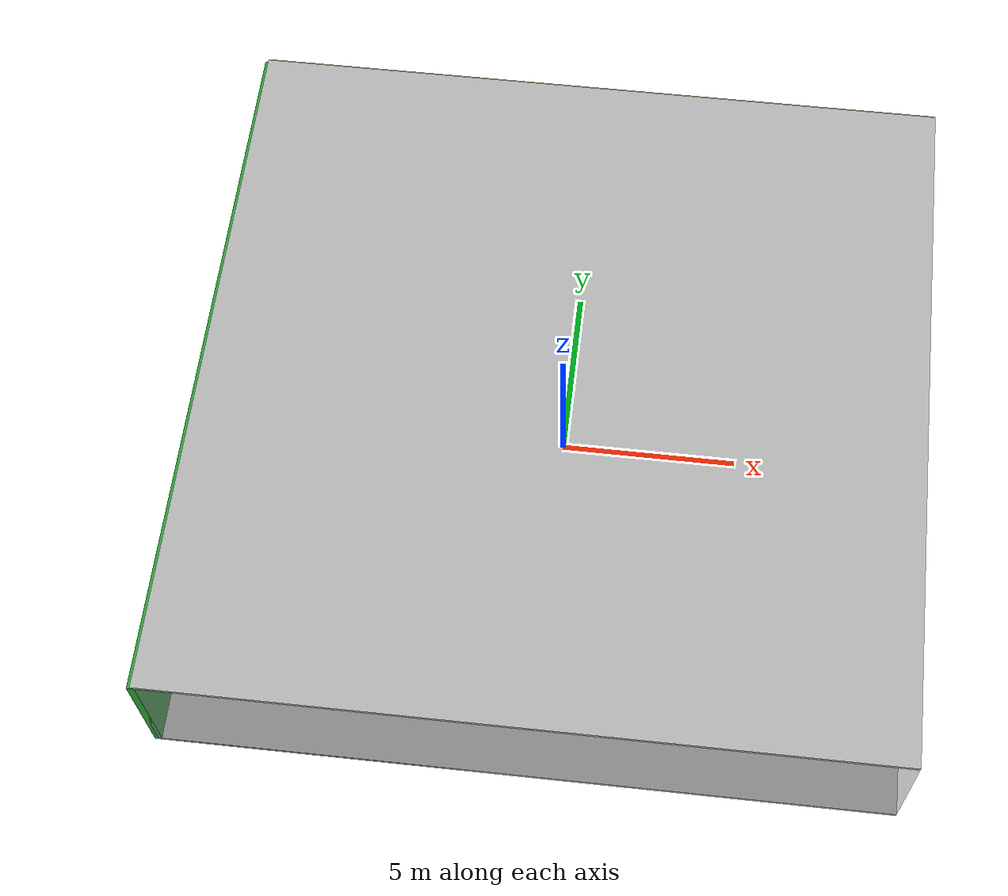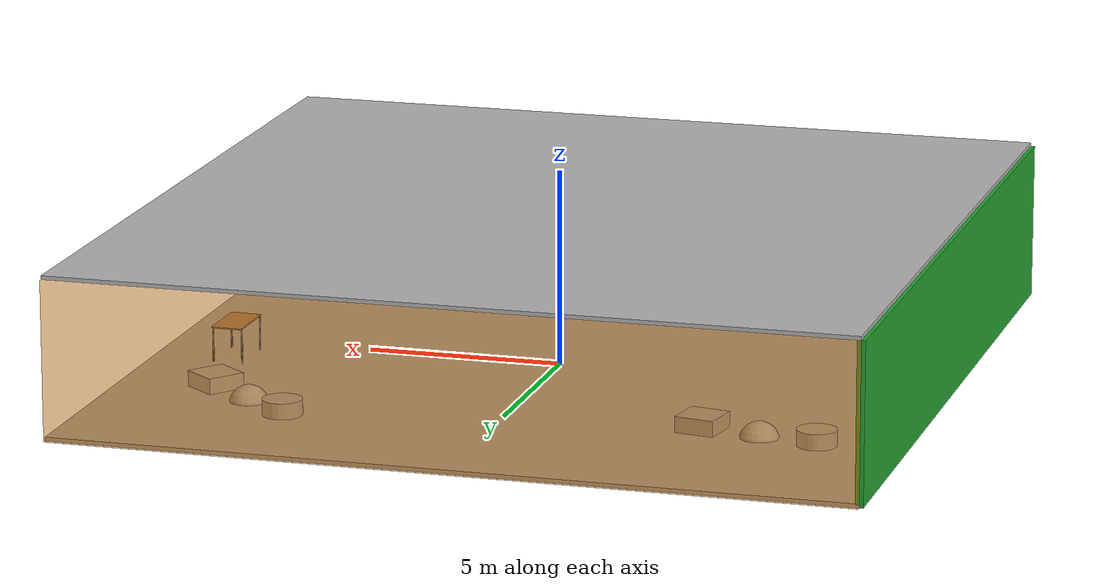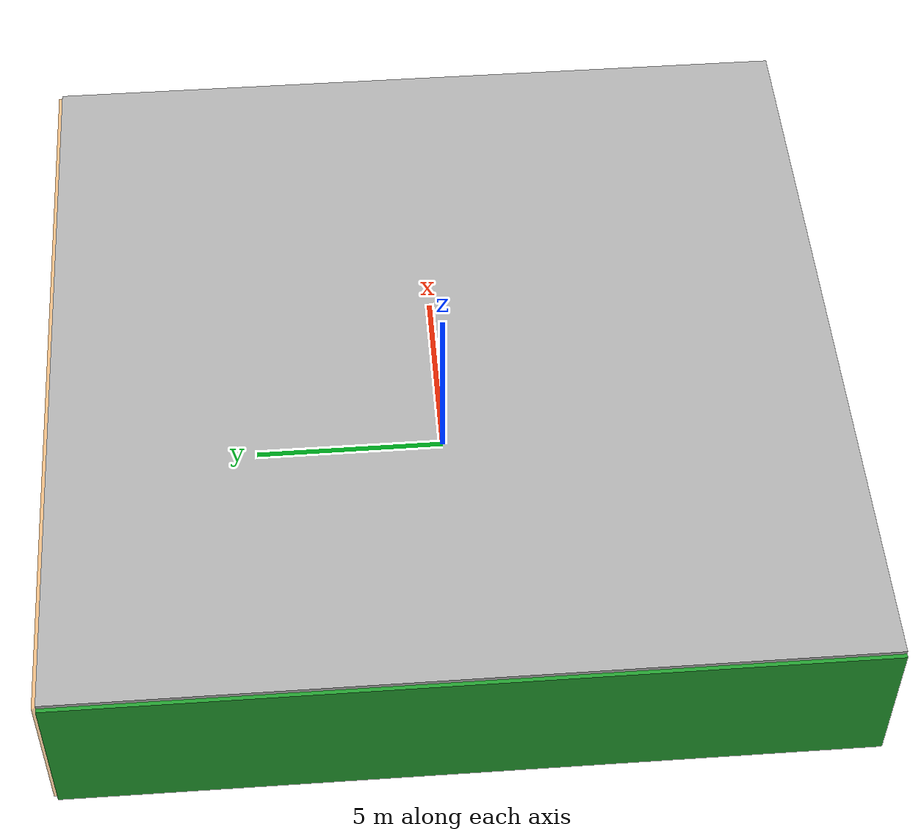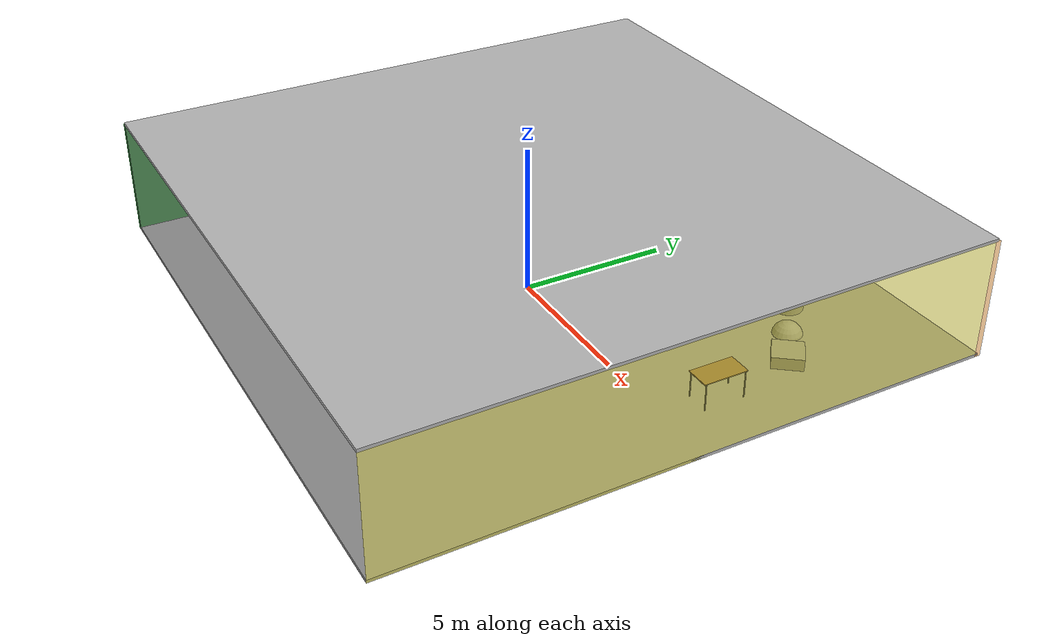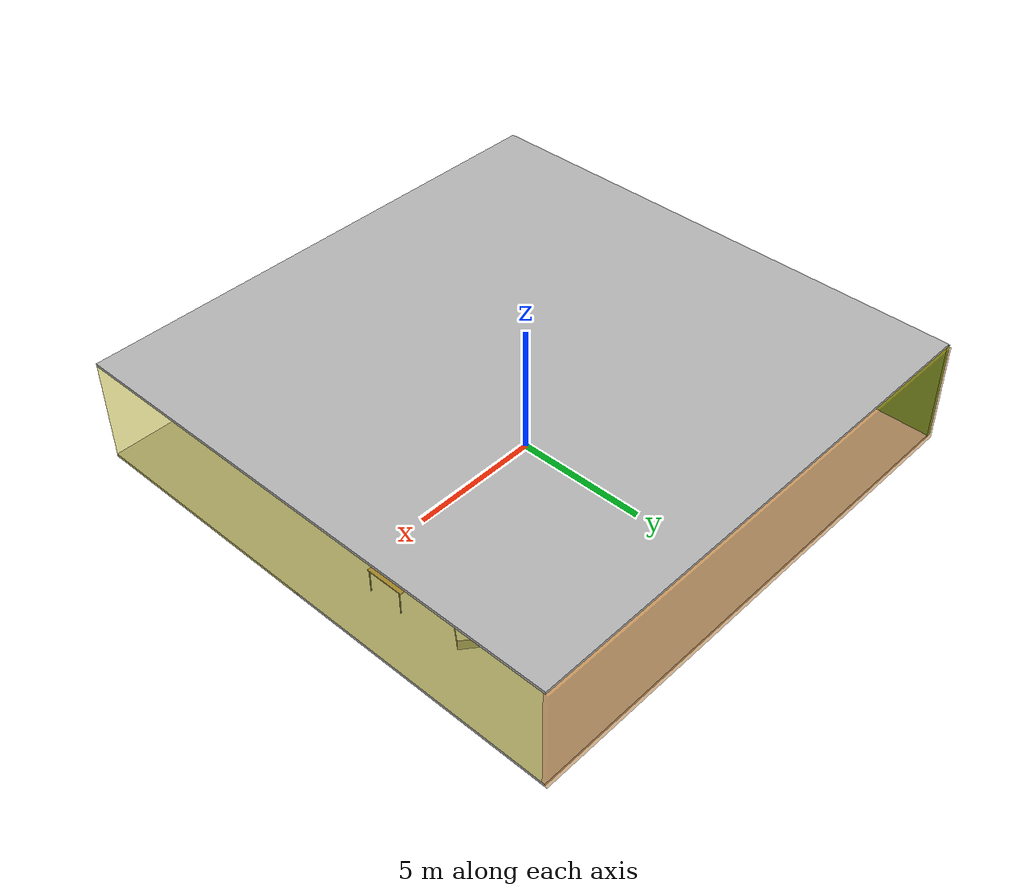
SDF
<sdf version="1.4">
 <world name="default">
  <physics type="ode">
   <max_step_size>0.001</max_step_size>
   <real_time_factor>1</real_time_factor>
   <real_time_update_rate>1000</real_time_update_rate>
   <gravity>0 0 -9.8</gravity>
  </physics>
  <scene><ambient>0.4 0.4 0.4 1</ambient><background>0.7 0.7 0.7 1</background><shadows>1</shadows></scene>
  <model name="Surrounding">
   <static>1</static>
   <link name="Ceiling">
    <collision name="Ceiling_Collision"><geometry><box><size>20 20 0.1</size></box></geometry></collision>
    <visual name="Ceiling_Visual">
     <geometry><box><size>20 20 0.1</size></box></geometry>
     <material>
      <script><uri>file://media/materials/scripts/gazebo.material</uri><name>Gazebo/CloudySky</name></script>
     </material>
    </visual>
    <pose>0 0 4.05 0 0 0</pose>
   </link>
   <link name="Wall_South">
    <collision name="Wall_South_Collision">
     <geometry><box><size>20 0 4</size></box></geometry>
     <pose>0 0 2 0 -0 0</pose>
    </collision>
    <visual name="Wall_South_Visual">
     <pose>0 0 2 0 -0 0</pose>
     <geometry><box><size>20 0 4</size></box></geometry>
     <material>
      <script><uri>file://media/materials/scripts/gazebo.material</uri><name>Gazebo/GreyTransparent</name></script>
     </material>
    </visual>
    <velocity_decay><linear>0</linear><angular>0</angular></velocity_decay>
    <pose>0 -10 0 0 -0 0</pose>
   </link>
   <link name="Wall_East">
    <collision name="Wall_21_Collision">
     <geometry><box><size>20 0 4</size></box></geometry>
     <pose>0 0 2 0 -0 0</pose>
    </collision>
    <visual name="Wall_21_Visual">
     <pose>0 0 2 0 -0 0</pose>
     <geometry><box><size>20 0 4</size></box></geometry>
     <material>
      <script>
       <uri>file://media/materials/scripts/gazebo.material</uri>
       <name>Gazebo/YellowTransparent</name>
      </script>
     </material>
    </visual>
    <velocity_decay><linear>0</linear><angular>0</angular></velocity_decay>
    <pose>10 0 0 0 -0 1.5708</pose>
   </link>
   <link name="Wall_North">
    <collision name="Wall_22_Collision">
     <geometry><box><size>20 0.2 4</size></box></geometry>
     <pose>0 0 2 0 -0 0</pose>
    </collision>
    <visual name="Wall_22_Visual">
     <pose>0 0 2 0 -0 0</pose>
     <geometry><box><size>20 0.2 4</size></box></geometry>
     <material>
      <script>
       <uri>file://media/materials/scripts/gazebo.material</uri>
       <name>Gazebo/OrangeTransparent</name>
      </script>
     </material>
    </visual>
    <velocity_decay><linear>0</linear><angular>0</angular></velocity_decay>
    <pose>0 10 0 0 -0 0</pose>
   </link>
   <link name="Wall_West">
    <collision name="Wall_23_Collision">
     <geometry><box><size>20 0.2 4</size></box></geometry>
     <pose>0 0 2 0 -0 0</pose>
    </collision>
    <visual name="Wall_23_Visual">
     <pose>0 0 2 0 -0 0</pose>
     <geometry><box><size>20 0.2 4</size></box></geometry>
     <material>
      <script><uri>file://media/materials/scripts/gazebo.material</uri><name>Gazebo/GreenGlow</name></script>
     </material>
    </visual>
    <velocity_decay><linear>0</linear><angular>0</angular></velocity_decay>
    <pose>-10 0 0 0 0 -1.5708</pose>
   </link>
   <link name="Ground_link">
    <collision name="collision">
     <pose>0 0 .05 0 -0 0</pose>
     <geometry><box><size>20 20 0.1</size></box></geometry>
    </collision>
    <visual name="visual">
     <pose>0 0 .05 0 -0 0</pose>
     <geometry><box><size>20 20 0.1</size></box></geometry>
     <material>
      <script><uri>file://media/materials/scripts/gazebo.material</uri><name>Gazebo/JointAnchor</name></script>
     </material>
    </visual>
   </link>
   <static>1</static>
  </model>
  <spherical_coordinates>
   <surface_model>EARTH_WGS84</surface_model>
   <latitude_deg>0</latitude_deg>
   <longitude_deg>0</longitude_deg>
   <elevation>0</elevation>
   <heading_deg>0</heading_deg>
  </spherical_coordinates>
  <light name="lightball_0" type="diffuse">
   <diffuse>0.8 0.8 0.8 1</diffuse>
   <specular>0.2 0.2 0.2 1</specular>
   <attenuation>
    <range>100</range>
    <constant>0.7</constant>
    <linear>0.01</linear>
    <quadratic>0.001</quadratic>
   </attenuation>
   <direction>-0.5 0.1 -0.9</direction>
   <pose>-3.13403868559 9.99624736505 1.60536260914 0 0 0</pose>
  </light>
  <light name="lightball_1" type="diffuse">
   <diffuse>0.8 0.8 0.8 1</diffuse>
   <specular>0.2 0.2 0.2 1</specular>
   <attenuation>
    <range>100</range>
    <constant>0.7</constant>
    <linear>0.01</linear>
    <quadratic>0.001</quadratic>
   </attenuation>
   <direction>-0.5 0.1 -0.9</direction>
   <pose>-9.79767127809 5.38823693684 2.85845024294 0 0 0</pose>
  </light>
  <light name="lightball_2" type="diffuse">
   <diffuse>0.8 0.8 0.8 1</diffuse>
   <specular>0.2 0.2 0.2 1</specular>
   <attenuation>
    <range>100</range>
    <constant>0.7</constant>
    <linear>0.01</linear>
    <quadratic>0.001</quadratic>
   </attenuation>
   <direction>-0.5 0.1 -0.9</direction>
   <pose>-8.07148131784 -9.28863223236 2.63326916636 0 0 0</pose>
  </light>
  <light name="lightball_3" type="diffuse">
   <diffuse>0.8 0.8 0.8 1</diffuse>
   <specular>0.2 0.2 0.2 1</specular>
   <attenuation>
    <range>100</range>
    <constant>0.7</constant>
    <linear>0.01</linear>
    <quadratic>0.001</quadratic>
   </attenuation>
   <direction>-0.5 0.1 -0.9</direction>
   <pose>5.07904258948 -5.12260443088 2.70525638554 0 0 0</pose>
  </light>
  <light name="lightball_4" type="diffuse">
   <diffuse>0.8 0.8 0.8 1</diffuse>
   <specular>0.2 0.2 0.2 1</specular>
   <attenuation>
    <range>100</range>
    <constant>0.7</constant>
    <linear>0.01</linear>
    <quadratic>0.001</quadratic>
   </attenuation>
   <direction>-0.5 0.1 -0.9</direction>
   <pose>8.20542086072 7.12931211668 1.11145126609 0 0 0</pose>
  </light>
  <include>
   <uri>model://textured_shapes</uri>
   <pose>-6.48306876546 5.34079161917 0 0 0 1.39839301302</pose>
  </include>
  <include><uri>model://table</uri><pose>7.97834779886 1.8168880021 0 0 0 1.5633665549</pose></include>
  <include>
   <uri>model://textured_shapes</uri>
   <pose>6.33409766243 5.65252702317 0 0 0 0.905985480957</pose>
  </include>
 </world>
</sdf>

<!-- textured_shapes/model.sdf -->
<sdf version="1.6">
  <model name="textured_shapes">
    <pose>0 0 0.5 0 0 0</pose>
    <link name="box">
      <pose>0 -1.5 0 0 0 0</pose>
      <collision name="collision">
        <geometry>
          <box>
            <size>1 1 1</size>
          </box>
        </geometry>
      </collision>
      <visual name="visual">
        <geometry>
          <box>
            <size>1 1 1</size>
          </box>
        </geometry>
        <material>
          <script>
            <uri>model://../model_source/models/textured_shapes/materials/scripts</uri>
            <uri>model://../model_source/models/textured_shapes/materials/textures</uri>
            <name>TexturedShape/Squares</name>
          </script>
        </material>
      </visual>
    </link>
    <link name="sphere">
      <collision name="collision">
        <geometry>
          <sphere>
            <radius>0.5</radius>
          </sphere>
        </geometry>
      </collision>
      <visual name="visual">
        <geometry>
          <sphere>
            <radius>0.5</radius>
          </sphere>
        </geometry>
        <material>
          <script>
            <uri>model://../model_source/models/textured_shapes/materials/scripts</uri>
            <uri>model://../model_source/models/textured_shapes/materials/textures</uri>
            <name>TexturedShape/Squares</name>
          </script>
        </material>
      </visual>
    </link>
    <link name="cylinder">
      <pose>0 1.5 0 0 0 0</pose>
      <collision name="collision">
        <geometry>
          <cylinder>
            <radius>0.5</radius>
            <length>1</length>
          </cylinder>
        </geometry>
      </collision>
      <visual name="visual">
        <geometry>
          <cylinder>
            <radius>0.5</radius>
            <length>1</length>
          </cylinder>
        </geometry>
        <material>
          <script>
            <uri>model://../model_source/models/textured_shapes/materials/scripts</uri>
            <uri>model://../model_source/models/textured_shapes/materials/textures</uri>
            <name>TexturedShape/Squares</name>
          </script>
        </material>
      </visual>
    </link>
  </model>
</sdf>

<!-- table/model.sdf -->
<sdf version="1.5">
  <model name="table">
    <static>true</static>
    <link name="link">
      <collision name="surface">
        <pose>0 0 1.0 0 0 0</pose>
        <geometry>
          <box>
            <size>1.5 0.8 0.03</size>
          </box>
        </geometry>
        <surface>
          <friction>
            <ode>
              <mu>0.6</mu>
              <mu2>0.6</mu2>
            </ode>
          </friction>
        </surface>
      </collision>
      <visual name="visual1">
        <pose>0 0 1.0 0 0 0</pose>
        <geometry>
          <box>
            <size>1.5 0.8 0.03</size>
          </box>
        </geometry>
        <material>
          <script>
            <uri>model://media/materials/scripts/gazebo.material</uri>
            <name>Gazebo/Wood</name>
          </script>
        </material>
      </visual>
      <collision name="front_left_leg">
        <pose>0.68 0.38 0.5 0 0 0</pose>
        <geometry>
          <cylinder>
            <radius>0.02</radius>
            <length>1.0</length>
          </cylinder>
        </geometry>
      </collision>
      <visual name="front_left_leg">
        <pose>0.68 0.38 0.5 0 0 0</pose>
        <geometry>
          <cylinder>
            <radius>0.02</radius>
            <length>1.0</length>
          </cylinder>
        </geometry>
        <material>
          <script>
            <uri>model://media/materials/scripts/gazebo.material</uri>
            <name>Gazebo/Grey</name>
          </script>
        </material>
      </visual>
      <collision name="front_right_leg">
        <pose>0.68 -0.38 0.5 0 0 0</pose>
        <geometry>
          <cylinder>
            <radius>0.02</radius>
            <length>1.0</length>
          </cylinder>
        </geometry>
      </collision>
      <visual name="front_right_leg">
        <pose>0.68 -0.38 0.5 0 0 0</pose>
        <geometry>
          <cylinder>
            <radius>0.02</radius>
            <length>1.0</length>
          </cylinder>
        </geometry>
        <material>
          <script>
            <uri>model://media/materials/scripts/gazebo.material</uri>
            <name>Gazebo/Grey</name>
          </script>
        </material>
      </visual>
      <collision name="back_right_leg">
        <pose>-0.68 -0.38 0.5 0 0 0</pose>
        <geometry>
          <cylinder>
            <radius>0.02</radius>
            <length>1.0</length>
          </cylinder>
        </geometry>
      </collision>
      <visual name="back_right_leg">
        <pose>-0.68 -0.38 0.5 0 0 0</pose>
        <geometry>
          <cylinder>
            <radius>0.02</radius>
            <length>1.0</length>
          </cylinder>
        </geometry>
        <material>
          <script>
            <uri>model://media/materials/scripts/gazebo.material</uri>
            <name>Gazebo/Grey</name>
          </script>
        </material>
      </visual>
      <collision name="back_left_leg">
        <pose>-0.68 0.38 0.5 0 0 0</pose>
        <geometry>
          <cylinder>
            <radius>0.02</radius>
            <length>1.0</length>
          </cylinder>
        </geometry>
      </collision>
      <visual name="back_left_leg">
        <pose>-0.68 0.38 0.5 0 0 0</pose>
        <geometry>
          <cylinder>
            <radius>0.02</radius>
            <length>1.0</length>
          </cylinder>
        </geometry>
        <material>
          <script>
            <uri>model://media/materials/scripts/gazebo.material</uri>
            <name>Gazebo/Grey</name>
          </script>
        </material>
      </visual>
    </link>
  </model>
</sdf>
